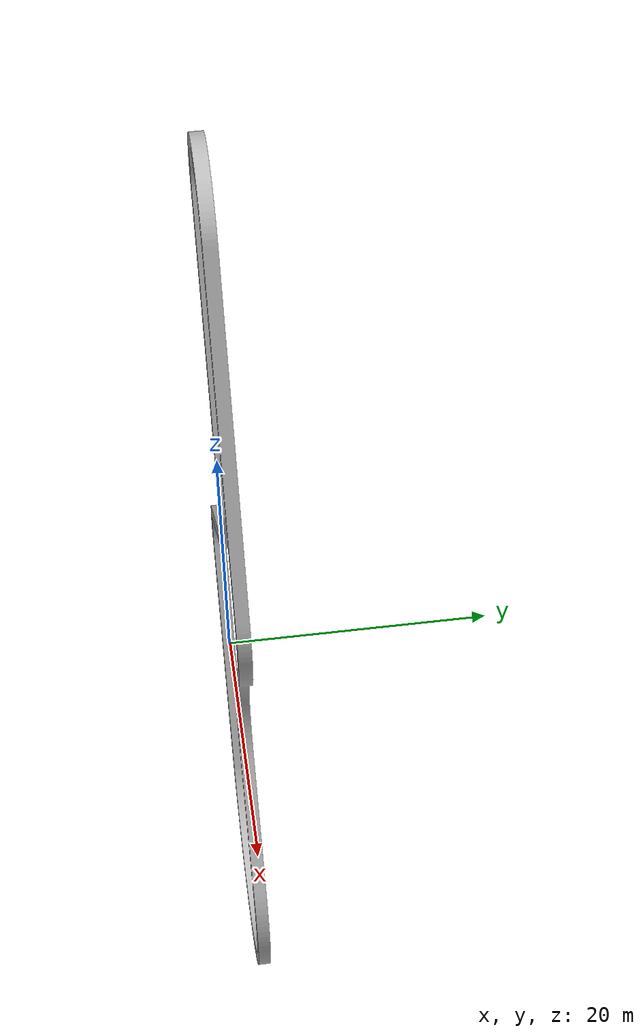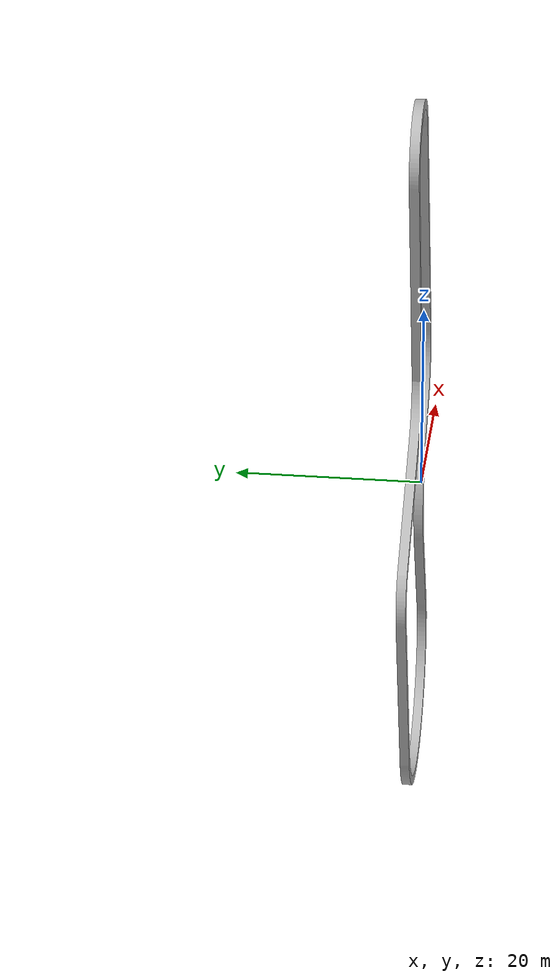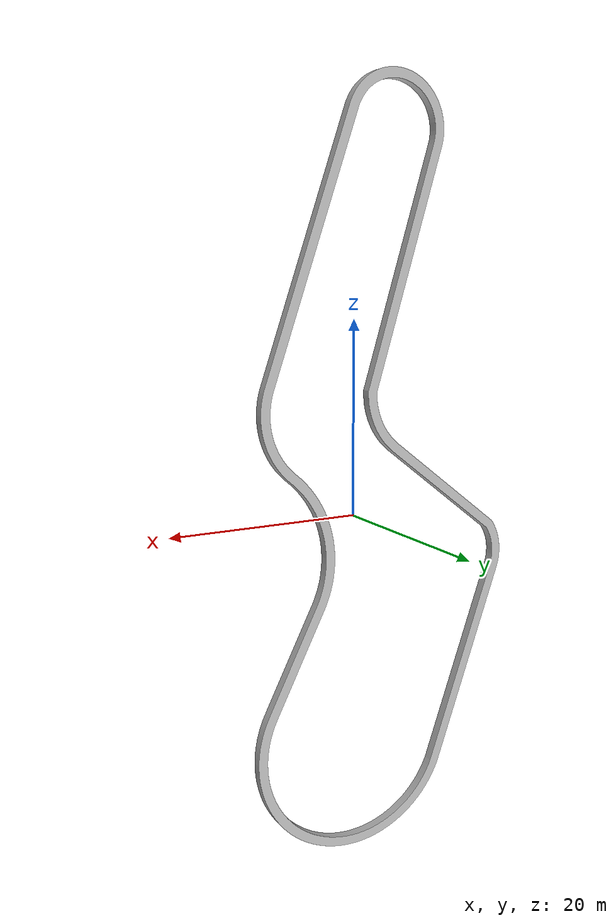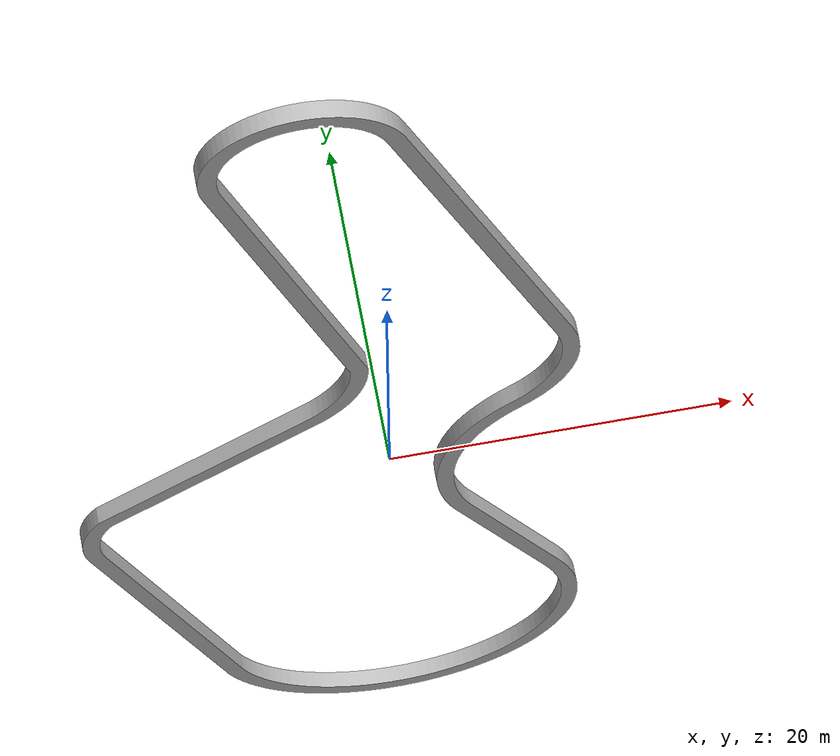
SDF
<?xml version='1.0'?>
<sdf version='1.6'>
  <model name="wallr1">
    <static>true</static>
    <pose>0 0 0 0 0 0</pose>

    <link name="wallr1">
      <pose>0 0 0 0 0 0</pose>
      <visual name="wallr">
        <geometry>
          <mesh>
            <uri>model://wallr1/meshes/RT1_Wall_R.dae</uri>
          </mesh>
        </geometry>
      </visual>
      <collision name="wallr">
        <geometry>
          <mesh>
            <uri>model://wallr1/meshes/RT1_Wall_R.dae</uri>
          </mesh>
        </geometry>
      </collision>
    </link>

  </model>
</sdf>
